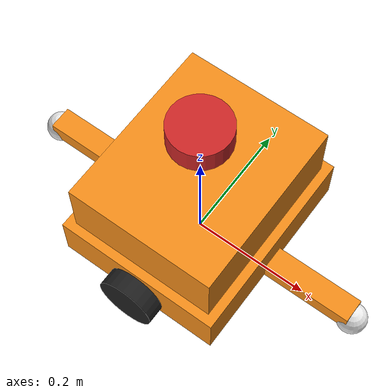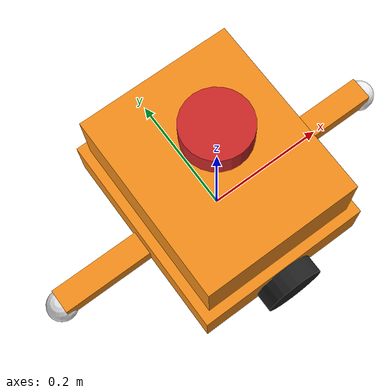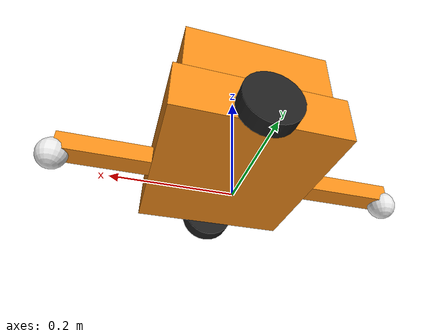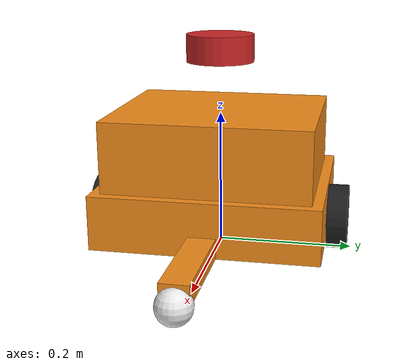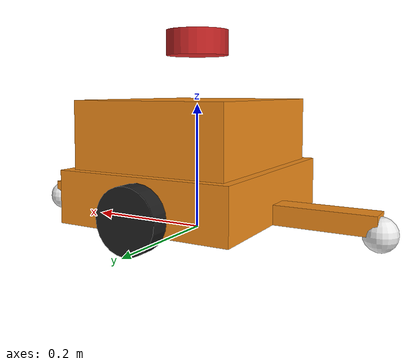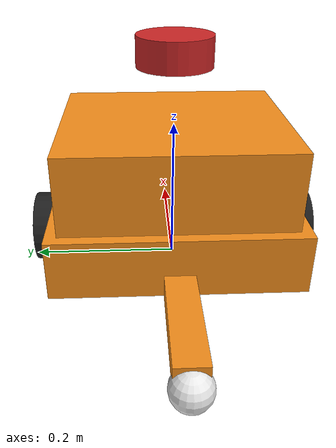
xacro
<?xml version="1.0"?>
<!-- Basic differential drive mobile base -->
<robot xmlns:xacro="http://www.ros.org/wiki/xacro" name="vqwbot">

  <!-- Import Rviz colors -->
  <xacro:include filename="$(find vqwbot_bringup)/urdf/vqwbot.materials.xacro" />

  <!-- Import inertia mscros -->
  <xacro:include filename="$(find vqwbot_bringup)/urdf/vqwbot.inertia.xacro" />

<!-- import vqwbot_base macro -->
  <xacro:include filename="$(find vqwbot_bringup)/urdf/vqwbot_description.urdf.xacro" />

  <!-- Import roboclaw.ros2_control macro -->
  <xacro:include filename="$(find vqwbot_bringup)/urdf/roboclaw.ros2_control.xacro" />

  <!-- Import bno086_ros2_control macro -->
  <xacro:include filename="$(find vqwbot_bringup)/urdf/bno086.ros2_control.xacro" />

  <xacro:vqwbot_base />

  <xacro:roboclaw_ros2_control name="roboclaw_controller" />

</robot>

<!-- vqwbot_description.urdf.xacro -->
<robot xmlns:xacro="http://www.ros.org/wiki/xacro">

  <xacro:macro name="vqwbot_base">
    <!-- Constants for robot dimensions -->
    <xacro:property name="PI" value="3.1415926535897931"/>
    <xacro:property name="base_mass" value="0.003" />
    <!-- TODO: Fixme -->
    <xacro:property name="base_width" value="0.04" />
    <xacro:property name="base_length" value="0.58" />
    <xacro:property name="base_height" value="0.03" />
    <xacro:property name="base1_width" value="0.33" />
    <xacro:property name="base1_length" value="0.28" />
    <xacro:property name="base1_height" value="0.08" />
    <xacro:property name="base2_width" value="0.30" />
    <xacro:property name="base2_length" value="0.25" />
    <xacro:property name="base2_height" value="0.12" />

    <xacro:property name="wheel_mass" value="0.001" />
    <xacro:property name="wheel_len" value="0.03" />
    <xacro:property name="wheel_radius" value="0.048" />

    <xacro:property name="caster_wheel_mass" value="0.0005" />  <!-- TODO: Fixme -->
    <xacro:property name="caster_wheel_radius" value="0.025" />

    <xacro:property name="lidar_height" value="0.25" />
    <xacro:property name="imu_height" value="0.12" />

    <xacro:property name="wheel_from_centerline" value="${-base1_width/2 - wheel_len/2}" />

    <link name="base_footprint" />
    <joint name="base_joint" type="fixed">
      <parent link="base_footprint"/>
      <child link="base_link"/>
      <origin xyz="0 0 ${wheel_radius}" rpy="0 0 0"/>
    </joint>
    <link name="base_link">
      <collision>
        <origin xyz="0 0 ${(base_height/2)-(wheel_radius/2)}" rpy="0 0 0"/>
        <geometry>
          <box size="${base_length} ${base_width} ${base_height}"/>
        </geometry>
      </collision>
      <visual>
        <origin xyz="0 0 ${(base_height/2)-(wheel_radius/2)}" rpy="0 0 0"/>
        <geometry>
          <box size="${base_length} ${base_width} ${base_height}"/>
        </geometry>
        <material name="orange"/>
      </visual>
      <xacro:box_inertia m="${base_mass}" w="${base_width}" h="${base_height}" d="${base_length}" />
    </link>
    <link name="base1_link">
      <collision>
        <origin xyz="0 0 ${(base1_height/2)-(wheel_radius/2)}" rpy="0 0 0"/>
        <geometry>
          <box size="${base1_length} ${base1_width} ${base1_height}"/>
        </geometry>
      </collision>
      <visual>
        <origin xyz="0 0 ${(base1_height/2)-(wheel_radius/2)}" rpy="0 0 0"/>
        <geometry>
          <box size="${base1_length} ${base1_width} ${base1_height}"/>
        </geometry>
        <material name="orange"/>
      </visual>
    </link>
    <joint name="base1_joint" type="fixed">
      <parent link="base_link"/>
      <child link="base1_link"/>
      <origin xyz="0 0 0" rpy="0 0 0"/>
    </joint>
    <link name="upper_base_link">
      <collision>
        <origin xyz="0 0 ${(base1_height/2)+(base2_height/2)}" rpy="0 0 0"/>
        <geometry>
          <box size="${base2_length} ${base2_width} ${base2_height}"/>
        </geometry>
      </collision>
      <visual>
        <origin xyz="0 0 ${(base1_height/2)+(base2_height/2)}" rpy="0 0 0"/>
        <geometry>
          <box size="${base2_length} ${base2_width} ${base2_height}"/>
        </geometry>
        <material name="orange"/>
      </visual>
    </link>
    <joint name="upper_base_joint" type="fixed">
      <parent link="base1_link"/>
      <child link="upper_base_link"/>
      <origin xyz="0 0 0" rpy="0 0 0"/>
    </joint>

    <joint name="left_wheel_joint" type="continuous">
      <parent link="base_link"/>
      <child link="left_wheel"/>
      <origin xyz="0 ${-base1_width/2 - wheel_len/2} 0" rpy="0 0 0"/>
      <axis xyz="0 1 0"/>
      <dynamics damping="0.2"/>
    </joint>
    <link name="left_wheel">
      <collision>
        <origin xyz="0 0 0" rpy="${PI/2} 0 0"/>
        <geometry>
          <cylinder length="${wheel_len}" radius="${wheel_radius}"/>
        </geometry>
      </collision>
      <visual>
        <origin xyz="0 0 0" rpy="${PI/2} 0 0"/>
        <geometry>
          <cylinder length="${wheel_len}" radius="${wheel_radius}"/>
        </geometry>
        <material name="black"/>
      </visual>
      <xacro:cylinder_inertia m="${wheel_mass}" r="${wheel_radius}" h="${wheel_len}" />
    </link>

    <joint name="right_wheel_joint" type="continuous">
      <parent link="base_link"/>
      <child link="right_wheel"/>
      <origin xyz="0 ${base1_width/2 + wheel_len/2} 0" rpy="0 0 0"/>
      <axis xyz="0 1 0"/>
      <dynamics damping="0.2"/>
    </joint>
    <link name="right_wheel">
      <collision>
        <origin xyz="0 0 0" rpy="${PI/2} 0 0"/>
        <geometry>
          <cylinder length="${wheel_len}" radius="${wheel_radius}"/>
        </geometry>
      </collision>
      <visual>
        <origin xyz="0 0 0" rpy="${PI/2} 0 0"/>
        <geometry>
          <cylinder length="${wheel_len}" radius="${wheel_radius}"/>
        </geometry>
        <material name="black"/>
      </visual>
      <xacro:cylinder_inertia m="${wheel_mass}" r="${wheel_radius}" h="${wheel_len}" />
    </link>

    <joint name="caster_front_wheel_joint" type="fixed">
      <parent link="base_link"/>
      <child link="caster_front_wheel"/>
      <origin xyz="${0 - base_length/2} 0 ${caster_wheel_radius - wheel_radius}" rpy="0 0 0"/>
    </joint>
    <link name="caster_front_wheel">
      <collision>
        <origin xyz="0 0 0" rpy="0 0 0"/>
        <geometry>
          <sphere radius="${caster_wheel_radius}"/>
        </geometry>
      </collision>
      <visual>
        <origin xyz="0 0 0" rpy="0 0 0"/>
        <geometry>
          <sphere radius="${caster_wheel_radius}"/>
        </geometry>
        <material name="white"/>
      </visual>
      <xacro:sphere_inertia m="${caster_wheel_mass}" r="${caster_wheel_radius}" />
    </link>
    <joint name="caster_rear_wheel_joint" type="fixed">
      <parent link="base_link"/>
      <child link="caster_rear_wheel"/>
      <origin xyz="${base_length/2} 0 ${caster_wheel_radius - wheel_radius}" rpy="0 0 0"/>
    </joint>
    <link name="caster_rear_wheel">
      <collision>
        <origin xyz="0 0 0" rpy="0 0 0"/>
        <geometry>
          <sphere radius="${caster_wheel_radius}"/>
        </geometry>
      </collision>
      <visual>
        <origin xyz="0 0 0" rpy="0 0 0"/>
        <geometry>
          <sphere radius="${caster_wheel_radius}"/>
        </geometry>
        <material name="white"/>
      </visual>
      <xacro:sphere_inertia m="${caster_wheel_mass}" r="${caster_wheel_radius}" />
    </link>

    <joint name="laser_joint" type="fixed">
      <parent link="base_link"/>
      <child link="laser_scan"/>
      <origin xyz="0 0 ${lidar_height}" rpy="0 0 0"/>
    </joint>

    <link name="laser_scan">
      <collision>
        <origin xyz="0 0 0" rpy="0 0 0"/>
        <geometry>
          <cylinder length="0.04" radius="0.05"/>
        </geometry>
      </collision>
      <visual>
        <origin xyz="0 0 0" rpy="0 0 0"/>
        <geometry>
          <cylinder length="0.04" radius="0.05"/>
        </geometry>
        <material name="red"/>
      </visual>
    </link>

    <joint name="imu_joint" type="fixed">
      <parent link="base_link"/>
      <child link="imu_link"/>
      <origin xyz="0 0 ${imu_height}" rpy="0 0 0"/>
      </joint>

      <link name="imu_link">
      <collision>
        <origin xyz="0 0 0" rpy="0 0 0"/>
        <geometry>
          <cylinder length="0.04" radius="0.05"/>
        </geometry>
      </collision>
      <visual>
        <origin xyz="0 0 0" rpy="0 0 0"/>
        <geometry>
          <cylinder length="0.004" radius="0.005"/>
        </geometry>
        <material name="green"/>
      </visual>
      <xacro:cylinder_inertia m="0.0001" r="0.005" h="0.004" />
    </link>

 <gazebo reference="imu_link">
  <sensor name="imu_sensor" type="imu">
   <plugin filename="libgazebo_ros_imu_sensor.so" name="imu_plugin">
      <ros>
        <namespace>/sim</namespace>
        <remapping>~/out:=imu</remapping>
      </ros>
      <initial_orientation_as_reference>false</initial_orientation_as_reference>
    </plugin>
    <always_on>true</always_on>
    <update_rate>100</update_rate>
    <visualize>true</visualize>
    <imu>
      <angular_velocity>
        <x>
          <noise type="gaussian">
            <mean>0.0</mean>
            <stddev>2e-4</stddev>
            <bias_mean>0.0000075</bias_mean>
            <bias_stddev>0.0000008</bias_stddev>
          </noise>
        </x>
        <y>
          <noise type="gaussian">
            <mean>0.0</mean>
            <stddev>2e-4</stddev>
            <bias_mean>0.0000075</bias_mean>
            <bias_stddev>0.0000008</bias_stddev>
          </noise>
        </y>
        <z>
          <noise type="gaussian">
            <mean>0.0</mean>
            <stddev>2e-4</stddev>
            <bias_mean>0.0000075</bias_mean>
            <bias_stddev>0.0000008</bias_stddev>
          </noise>
        </z>
      </angular_velocity>
      <linear_acceleration>
        <x>
          <noise type="gaussian">
            <mean>0.0</mean>
            <stddev>1.7e-2</stddev>
            <bias_mean>0.1</bias_mean>
            <bias_stddev>0.001</bias_stddev>
          </noise>
        </x>
        <y>
          <noise type="gaussian">
            <mean>0.0</mean>
            <stddev>1.7e-2</stddev>
            <bias_mean>0.1</bias_mean>
            <bias_stddev>0.001</bias_stddev>
          </noise>
        </y>
        <z>
          <noise type="gaussian">
            <mean>0.0</mean>
            <stddev>1.7e-2</stddev>
            <bias_mean>0.1</bias_mean>
            <bias_stddev>0.001</bias_stddev>
          </noise>
        </z>
      </linear_acceleration>
    </imu>
  </sensor>
</gazebo>

<gazebo>
  <plugin name='diff_drive' filename='libgazebo_ros_diff_drive.so'>
    <ros>
      <namespace>/sim</namespace>
    </ros>

    <!-- wheels -->
    <left_joint>left_wheel_joint</left_joint>
    <right_joint>right_wheel_joint</right_joint>

    <!-- kinematics -->
    <wheel_separation>${wheel_from_centerline * 2}</wheel_separation>
    <wheel_diameter>${wheel_radius * 2}</wheel_diameter>

    <!-- limits -->
    <max_wheel_torque>20</max_wheel_torque>
    <max_wheel_acceleration>1.0</max_wheel_acceleration>

    <!-- output -->
    <publish_odom>true</publish_odom>
    <publish_odom_tf>false</publish_odom_tf>
    <publish_wheel_tf>true</publish_wheel_tf>

    <odometry_frame>odom</odometry_frame>
    <robot_base_frame>base_link</robot_base_frame>
  </plugin>
</gazebo>

  </xacro:macro>
</robot>
